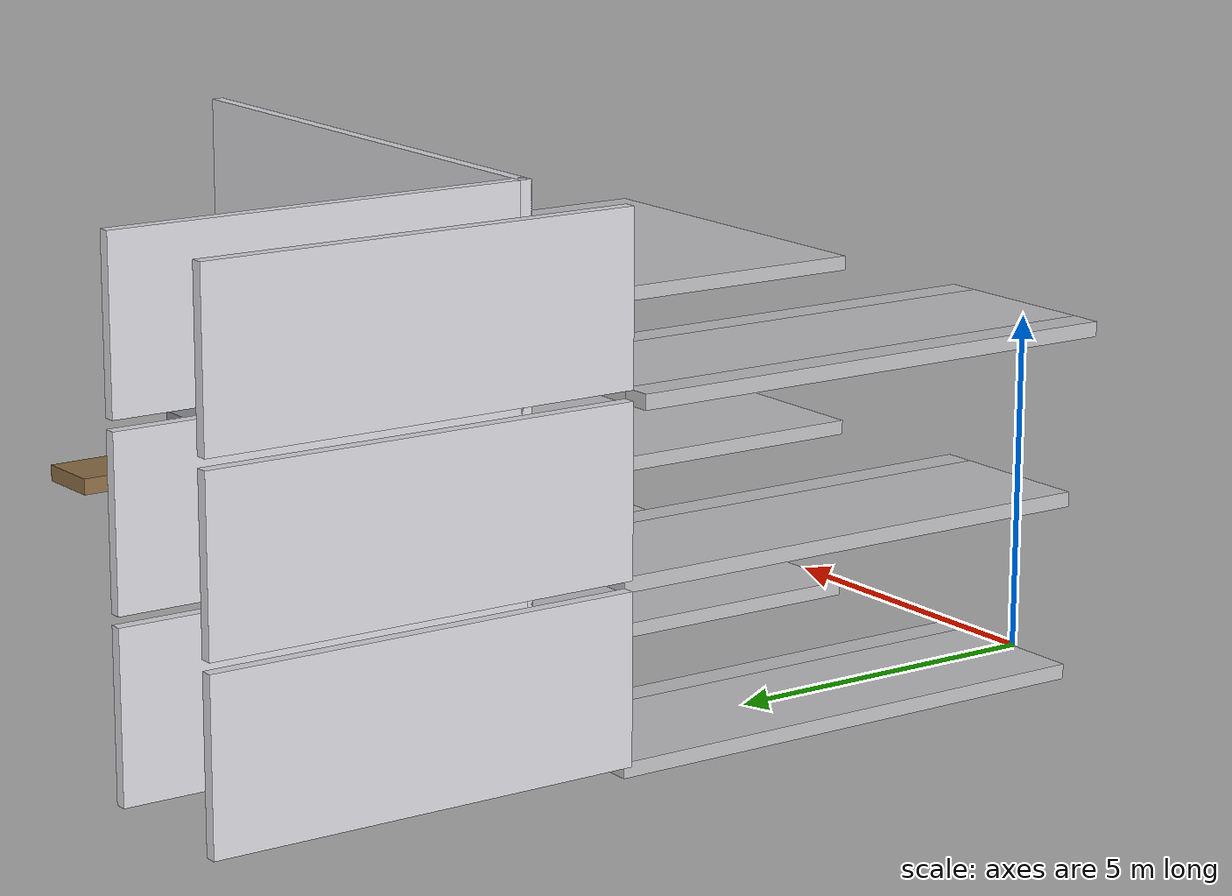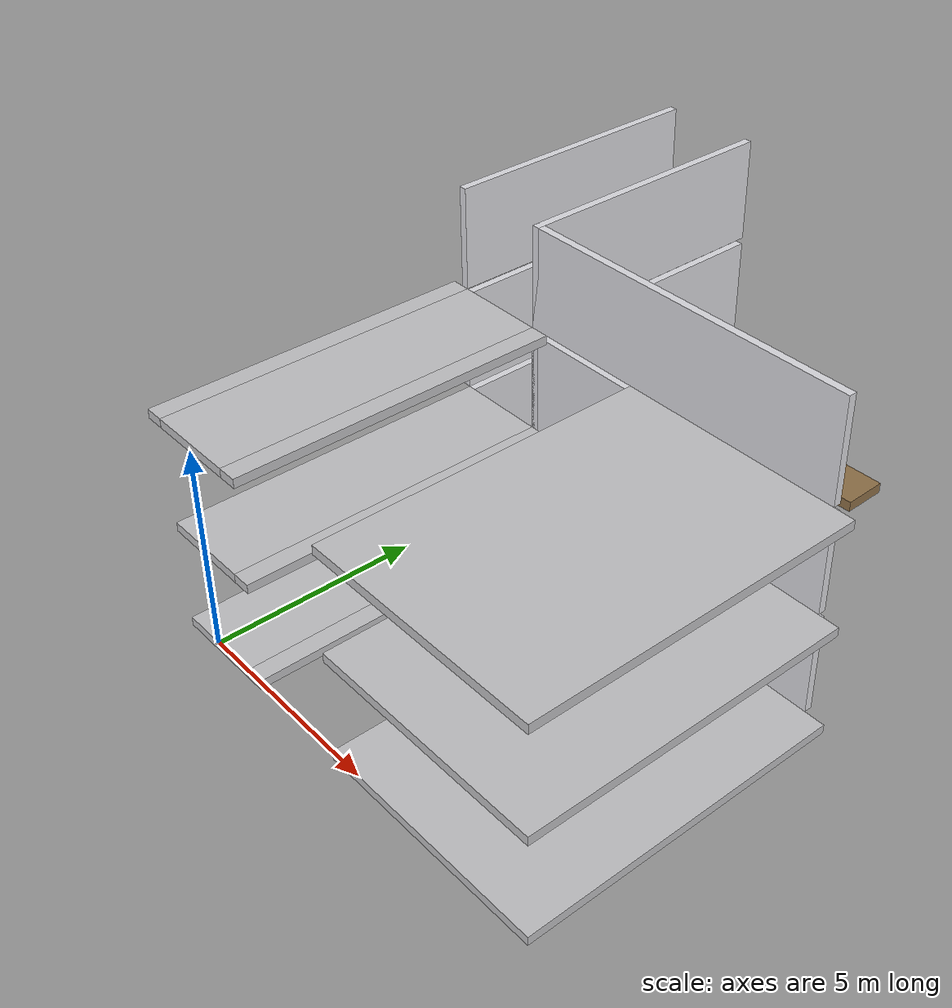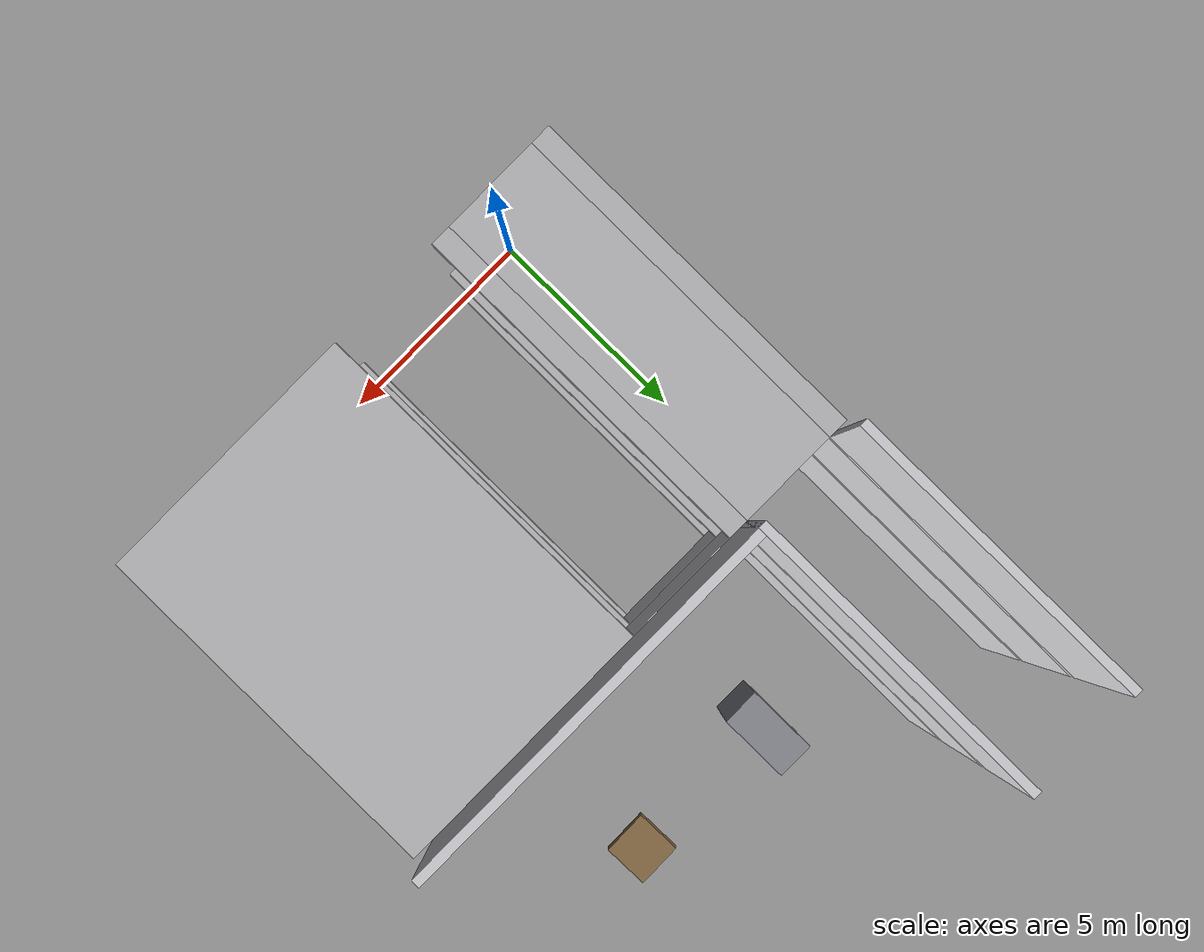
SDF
<sdf version="1.7">
 <model name="generated_building">
  <static>true</static>
  <link name="slab_floor_0_3">
   <pose>0.0000 3.9250 -0.1100 0.0000 0.0000 0.0000</pose>
   <collision name="slab_floor_0_3_collision">
    <geometry><box><size>2.2000 7.8500 0.2200</size></box></geometry>
   </collision>
   <visual name="slab_floor_0_3_visual">
    <geometry><box><size>2.2000 7.8500 0.2200</size></box></geometry>
    <material><ambient>0.76 0.76 0.77 1</ambient><diffuse>0.76 0.76 0.77 1</diffuse></material>
   </visual>
   <gravity>false</gravity>
  </link>
  <link name="slab_floor_0_4">
   <pose>1.3300 3.9250 -0.1100 0.0000 0.0000 0.0000</pose>
   <collision name="slab_floor_0_4_collision">
    <geometry><box><size>0.4600 7.8500 0.2200</size></box></geometry>
   </collision>
   <visual name="slab_floor_0_4_visual">
    <geometry><box><size>0.4600 7.8500 0.2200</size></box></geometry>
    <material><ambient>0.76 0.76 0.77 1</ambient><diffuse>0.76 0.76 0.77 1</diffuse></material>
   </visual>
   <gravity>false</gravity>
  </link>
  <link name="slab_floor_0_5">
   <pose>7.0700 3.9250 -0.1100 0.0000 0.0000 0.0000</pose>
   <collision name="slab_floor_0_5_collision">
    <geometry><box><size>5.8600 7.8500 0.2200</size></box></geometry>
   </collision>
   <visual name="slab_floor_0_5_visual">
    <geometry><box><size>5.8600 7.8500 0.2200</size></box></geometry>
    <material><ambient>0.76 0.76 0.77 1</ambient><diffuse>0.76 0.76 0.77 1</diffuse></material>
   </visual>
   <gravity>false</gravity>
  </link>
  <link name="floor_0_room_0_corridor_wall_lower">
   <pose>-1.1900 11.0575 1.2250 0.0000 0.0000 0.0000</pose>
   <collision name="floor_0_room_0_corridor_wall_lower_collision">
    <geometry><box><size>0.1800 6.4150 2.4500</size></box></geometry>
   </collision>
   <visual name="floor_0_room_0_corridor_wall_lower_visual">
    <geometry><box><size>0.1800 6.4150 2.4500</size></box></geometry>
    <material><ambient>0.86 0.86 0.88 1</ambient><diffuse>0.86 0.86 0.88 1</diffuse></material>
   </visual>
   <gravity>false</gravity>
  </link>
  <link name="floor_0_room_1_corridor_wall_lower">
   <pose>1.1900 11.0575 1.2250 0.0000 0.0000 0.0000</pose>
   <collision name="floor_0_room_1_corridor_wall_lower_collision">
    <geometry><box><size>0.1800 6.4150 2.4500</size></box></geometry>
   </collision>
   <visual name="floor_0_room_1_corridor_wall_lower_visual">
    <geometry><box><size>0.1800 6.4150 2.4500</size></box></geometry>
    <material><ambient>0.86 0.86 0.88 1</ambient><diffuse>0.86 0.86 0.88 1</diffuse></material>
   </visual>
   <gravity>false</gravity>
  </link>
  <link name="floor_0_room_1_south_wall">
   <pose>5.3000 7.9400 1.2250 0.0000 0.0000 0.0000</pose>
   <collision name="floor_0_room_1_south_wall_collision">
    <geometry><box><size>8.4000 0.1800 2.4500</size></box></geometry>
   </collision>
   <visual name="floor_0_room_1_south_wall_visual">
    <geometry><box><size>8.4000 0.1800 2.4500</size></box></geometry>
    <material><ambient>0.86 0.86 0.88 1</ambient><diffuse>0.86 0.86 0.88 1</diffuse></material>
   </visual>
   <gravity>false</gravity>
  </link>
  <link name="slab_floor_1_3">
   <pose>0.0000 3.9250 2.4900 0.0000 0.0000 0.0000</pose>
   <collision name="slab_floor_1_3_collision">
    <geometry><box><size>2.2000 7.8500 0.2200</size></box></geometry>
   </collision>
   <visual name="slab_floor_1_3_visual">
    <geometry><box><size>2.2000 7.8500 0.2200</size></box></geometry>
    <material><ambient>0.76 0.76 0.77 1</ambient><diffuse>0.76 0.76 0.77 1</diffuse></material>
   </visual>
   <gravity>false</gravity>
  </link>
  <link name="slab_floor_1_4">
   <pose>1.3300 3.9250 2.4900 0.0000 0.0000 0.0000</pose>
   <collision name="slab_floor_1_4_collision">
    <geometry><box><size>0.4600 7.8500 0.2200</size></box></geometry>
   </collision>
   <visual name="slab_floor_1_4_visual">
    <geometry><box><size>0.4600 7.8500 0.2200</size></box></geometry>
    <material><ambient>0.76 0.76 0.77 1</ambient><diffuse>0.76 0.76 0.77 1</diffuse></material>
   </visual>
   <gravity>false</gravity>
  </link>
  <link name="slab_floor_1_5">
   <pose>7.0700 3.9250 2.4900 0.0000 0.0000 0.0000</pose>
   <collision name="slab_floor_1_5_collision">
    <geometry><box><size>5.8600 7.8500 0.2200</size></box></geometry>
   </collision>
   <visual name="slab_floor_1_5_visual">
    <geometry><box><size>5.8600 7.8500 0.2200</size></box></geometry>
    <material><ambient>0.76 0.76 0.77 1</ambient><diffuse>0.76 0.76 0.77 1</diffuse></material>
   </visual>
   <gravity>false</gravity>
  </link>
  <link name="floor_1_room_0_corridor_wall_lower">
   <pose>-1.1900 11.0575 3.8250 0.0000 0.0000 0.0000</pose>
   <collision name="floor_1_room_0_corridor_wall_lower_collision">
    <geometry><box><size>0.1800 6.4150 2.4500</size></box></geometry>
   </collision>
   <visual name="floor_1_room_0_corridor_wall_lower_visual">
    <geometry><box><size>0.1800 6.4150 2.4500</size></box></geometry>
    <material><ambient>0.86 0.86 0.88 1</ambient><diffuse>0.86 0.86 0.88 1</diffuse></material>
   </visual>
   <gravity>false</gravity>
  </link>
  <link name="floor_1_room_1_corridor_wall_lower">
   <pose>1.1900 11.0575 3.8250 0.0000 0.0000 0.0000</pose>
   <collision name="floor_1_room_1_corridor_wall_lower_collision">
    <geometry><box><size>0.1800 6.4150 2.4500</size></box></geometry>
   </collision>
   <visual name="floor_1_room_1_corridor_wall_lower_visual">
    <geometry><box><size>0.1800 6.4150 2.4500</size></box></geometry>
    <material><ambient>0.86 0.86 0.88 1</ambient><diffuse>0.86 0.86 0.88 1</diffuse></material>
   </visual>
   <gravity>false</gravity>
  </link>
  <link name="floor_1_room_1_south_wall">
   <pose>5.3000 7.9400 3.8250 0.0000 0.0000 0.0000</pose>
   <collision name="floor_1_room_1_south_wall_collision">
    <geometry><box><size>8.4000 0.1800 2.4500</size></box></geometry>
   </collision>
   <visual name="floor_1_room_1_south_wall_visual">
    <geometry><box><size>8.4000 0.1800 2.4500</size></box></geometry>
    <material><ambient>0.86 0.86 0.88 1</ambient><diffuse>0.86 0.86 0.88 1</diffuse></material>
   </visual>
   <gravity>false</gravity>
  </link>
  <link name="floor_1_room_1_rack_c">
   <pose>3.69049441 11.1242345 3.5 0 0 0.00416555285</pose>
   <collision name="floor_1_room_1_rack_c_collision">
    <geometry><box><size>0.8000 1.5000 1.8000</size></box></geometry>
   </collision>
   <visual name="floor_1_room_1_rack_c_visual">
    <geometry><box><size>0.8000 1.5000 1.8000</size></box></geometry>
    <material><ambient>0.56 0.57 0.60 1</ambient><diffuse>0.56 0.57 0.60 1</diffuse></material>
   </visual>
   <gravity>false</gravity>
  </link>
  <link name="floor_1_room_1_pallet">
   <pose>7.27618048 11.3033741 2.72 0 0 0.0203858461</pose>
   <collision name="floor_1_room_1_pallet_collision">
    <geometry><box><size>1.0000 1.0000 0.2400</size></box></geometry>
   </collision>
   <visual name="floor_1_room_1_pallet_visual">
    <geometry><box><size>1.0000 1.0000 0.2400</size></box></geometry>
    <material><ambient>0.56 0.44 0.28 1</ambient><diffuse>0.56 0.44 0.28 1</diffuse></material>
   </visual>
   <gravity>false</gravity>
  </link>
  <link name="slab_floor_2_2">
   <pose>-1.3300 3.9250 5.0900 0.0000 0.0000 0.0000</pose>
   <collision name="slab_floor_2_2_collision">
    <geometry><box><size>0.4600 7.8500 0.2200</size></box></geometry>
   </collision>
   <visual name="slab_floor_2_2_visual">
    <geometry><box><size>0.4600 7.8500 0.2200</size></box></geometry>
    <material><ambient>0.76 0.76 0.77 1</ambient><diffuse>0.76 0.76 0.77 1</diffuse></material>
   </visual>
   <gravity>false</gravity>
  </link>
  <link name="slab_floor_2_3">
   <pose>0.0000 3.9250 5.0900 0.0000 0.0000 0.0000</pose>
   <collision name="slab_floor_2_3_collision">
    <geometry><box><size>2.2000 7.8500 0.2200</size></box></geometry>
   </collision>
   <visual name="slab_floor_2_3_visual">
    <geometry><box><size>2.2000 7.8500 0.2200</size></box></geometry>
    <material><ambient>0.76 0.76 0.77 1</ambient><diffuse>0.76 0.76 0.77 1</diffuse></material>
   </visual>
   <gravity>false</gravity>
  </link>
  <link name="slab_floor_2_4">
   <pose>1.3300 3.9250 5.0900 0.0000 0.0000 0.0000</pose>
   <collision name="slab_floor_2_4_collision">
    <geometry><box><size>0.4600 7.8500 0.2200</size></box></geometry>
   </collision>
   <visual name="slab_floor_2_4_visual">
    <geometry><box><size>0.4600 7.8500 0.2200</size></box></geometry>
    <material><ambient>0.76 0.76 0.77 1</ambient><diffuse>0.76 0.76 0.77 1</diffuse></material>
   </visual>
   <gravity>false</gravity>
  </link>
  <link name="slab_floor_2_5">
   <pose>7.0700 3.9250 5.0900 0.0000 0.0000 0.0000</pose>
   <collision name="slab_floor_2_5_collision">
    <geometry><box><size>5.8600 7.8500 0.2200</size></box></geometry>
   </collision>
   <visual name="slab_floor_2_5_visual">
    <geometry><box><size>5.8600 7.8500 0.2200</size></box></geometry>
    <material><ambient>0.76 0.76 0.77 1</ambient><diffuse>0.76 0.76 0.77 1</diffuse></material>
   </visual>
   <gravity>false</gravity>
  </link>
  <link name="floor_2_room_0_corridor_wall_lower">
   <pose>-1.1900 11.0575 6.4250 0.0000 0.0000 0.0000</pose>
   <collision name="floor_2_room_0_corridor_wall_lower_collision">
    <geometry><box><size>0.1800 6.4150 2.4500</size></box></geometry>
   </collision>
   <visual name="floor_2_room_0_corridor_wall_lower_visual">
    <geometry><box><size>0.1800 6.4150 2.4500</size></box></geometry>
    <material><ambient>0.86 0.86 0.88 1</ambient><diffuse>0.86 0.86 0.88 1</diffuse></material>
   </visual>
   <gravity>false</gravity>
  </link>
  <link name="floor_2_room_1_corridor_wall_lower">
   <pose>1.1900 11.0575 6.4250 0.0000 0.0000 0.0000</pose>
   <collision name="floor_2_room_1_corridor_wall_lower_collision">
    <geometry><box><size>0.1800 6.4150 2.4500</size></box></geometry>
   </collision>
   <visual name="floor_2_room_1_corridor_wall_lower_visual">
    <geometry><box><size>0.1800 6.4150 2.4500</size></box></geometry>
    <material><ambient>0.86 0.86 0.88 1</ambient><diffuse>0.86 0.86 0.88 1</diffuse></material>
   </visual>
   <gravity>false</gravity>
  </link>
  <link name="floor_2_room_1_south_wall">
   <pose>5.3000 7.9400 6.4250 0.0000 0.0000 0.0000</pose>
   <collision name="floor_2_room_1_south_wall_collision">
    <geometry><box><size>8.4000 0.1800 2.4500</size></box></geometry>
   </collision>
   <visual name="floor_2_room_1_south_wall_visual">
    <geometry><box><size>8.4000 0.1800 2.4500</size></box></geometry>
    <material><ambient>0.86 0.86 0.88 1</ambient><diffuse>0.86 0.86 0.88 1</diffuse></material>
   </visual>
   <gravity>false</gravity>
  </link>
 </model>
</sdf>
